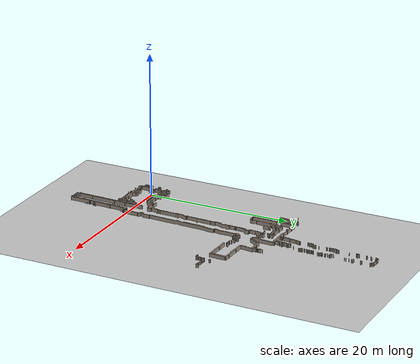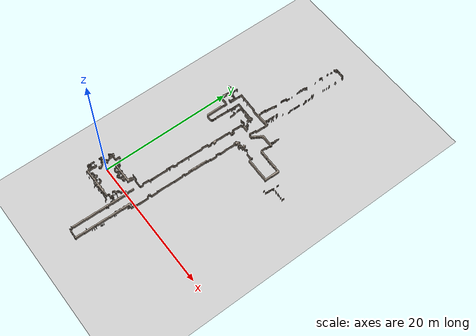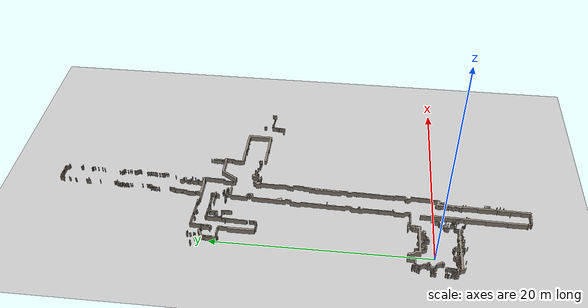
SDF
<?xml version="1.0" ?>
<sdf version="1.8">
  <world name="andar3todoalterado">
    <physics name="1ms" type="ignored"><max_step_size>0.001</max_step_size><real_time_factor>1.0</real_time_factor></physics>
    <plugin filename="gz-sim-physics-system" name="gz::sim::systems::Physics"/>
    <plugin filename="gz-sim-user-commands-system" name="gz::sim::systems::UserCommands"/>
    <plugin filename="gz-sim-scene-broadcaster-system" name="gz::sim::systems::SceneBroadcaster"/>
    <plugin filename="gz-sim-sensors-system" name="gz::sim::systems::Sensors"><render_engine>ogre2</render_engine></plugin>
    <light type="directional" name="sun">
      <cast_shadows>false</cast_shadows>
      <pose>0 0 10 0 0 0</pose>
      <diffuse>0.9 0.9 0.9 1</diffuse>
      <direction>-0.3 0.2 -0.9</direction>
    </light>
    <model name="ground_plane">
      <static>true</static>
      <link name="link">
        <collision name="col"><geometry><plane><normal>0 0 1</normal><size>100 100</size></plane></geometry></collision>
        <visual name="vis"><geometry><plane><normal>0 0 1</normal><size>100 100</size></plane></geometry>
          <material><ambient>0.8 0.8 0.8 1</ambient><diffuse>0.8 0.8 0.8 1</diffuse></material></visual>
      </link>
    </model>

    <model name="walls">
      <static>true</static>
      <link name="link">
        <collision name="col"><geometry><mesh><uri>andar3todoalterado.obj</uri></mesh></geometry></collision>
        <visual name="vis"><geometry><mesh><uri>andar3todoalterado.obj</uri></mesh></geometry>
          <material><ambient>0.6 0.55 0.5 1</ambient><diffuse>0.6 0.55 0.5 1</diffuse></material>
        </visual>
      </link>
    </model>
  </world>
</sdf>
